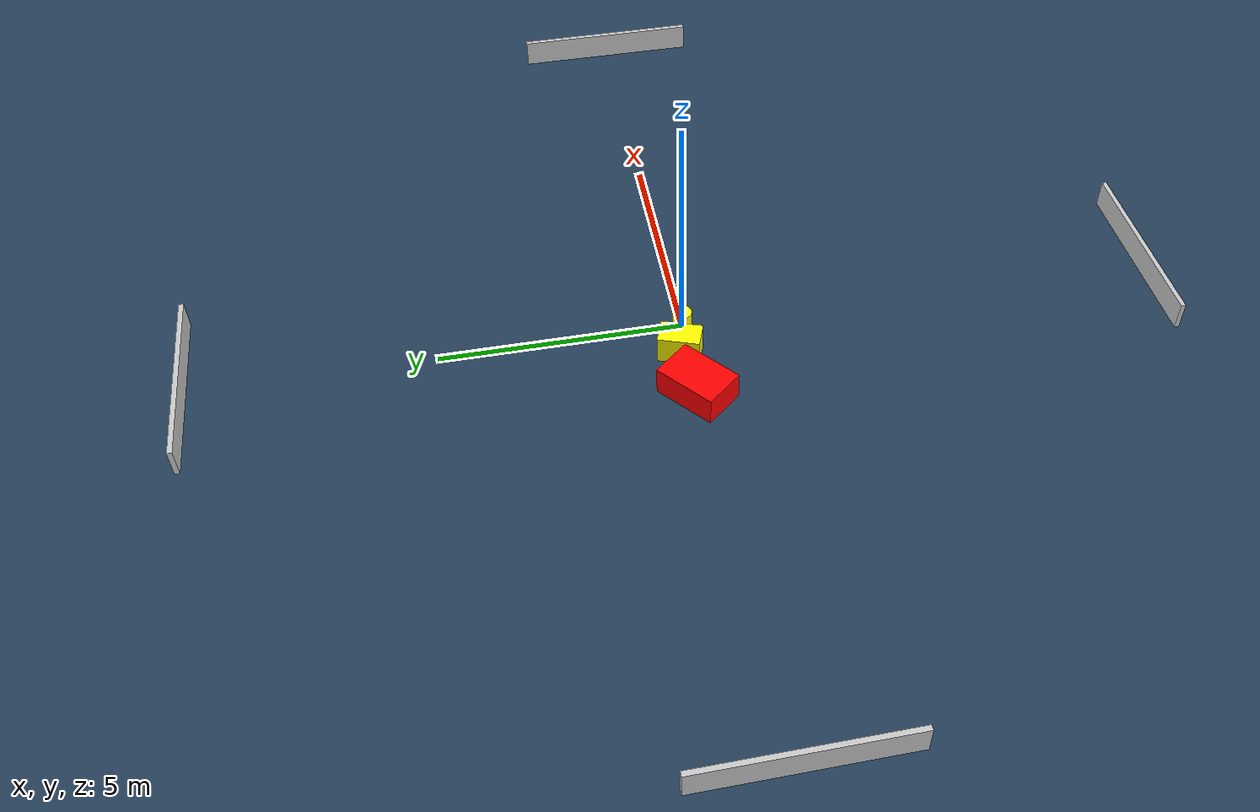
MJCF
<?xml version="1.0" ?>
<mujoco model="generated_environment">
  <option timestep="0.01" integrator="RK4" cone="elliptic"/>
  <default>
    <geom density="1"/>
  </default>
  <asset>
    <texture builtin="gradient" height="3072" name="skybox" rgb1="0.3 0.5 0.7" rgb2="0 0 0" type="skybox" width="512"/>
    <texture builtin="checker" height="300" name="groundplane" rgb1="0.2 0.3 0.4" rgb2="0.1 0.2 0.3" type="2d" width="300"/>
    <material name="groundplane" reflectance="0.2" texrepeat="5 5" texture="groundplane"/>
  </asset>
  <worldbody>
    <light dir="0 0 -1" directional="true" pos="0 0 1.5"/>
    <geom condim="3" friction="0.5 0.005 0.001" material="groundplane" name="floor" pos="0 0 0" size="0 0 0.05" type="plane"/>
    <body name="walls">
      <geom name="wall_1" condim="4" pos="-10.0 0.0 0.3" rgba="0.800000011920929 0.800000011920929 0.800000011920929 1.0" size="0.05 2.0 0.3" type="box"/>
      <geom name="wall_2" condim="4" pos="10.0 0.0 0.3" rgba="0.800000011920929 0.800000011920929 0.800000011920929 1.0" size="0.05 2.0 0.3" type="box"/>
      <geom name="wall_3" condim="4" pos="0.0 -10.0 0.3" rgba="0.800000011920929 0.800000011920929 0.800000011920929 1.0" size="2.0 0.05 0.3" type="box"/>
      <geom name="wall_4" condim="4" pos="0.0 10.0 0.3" rgba="0.800000011920929 0.800000011920929 0.800000011920929 1.0" size="2.0 0.05 0.3" type="box"/>
    </body>
    <body name="robot">
      <joint name="joint_x" type="slide" pos="0 0 0" axis="1 0 0"/>
      <joint name="joint_y" type="slide" pos="0 0 0" axis="0 1 0"/>
      <geom name="robot" type="cylinder" pos="0.0 0.0 0.2" size="0.2 0.2 0.0" mass="5.0" friction="1.0 0.005 0.0001" condim="4" rgba="1.0 1.0 0.0 1.0"/>
    </body>
    <body name="obstacle_1_movable">
      <geom name="obstacle_1_movable" condim="4" pos="-0.7672963316076717 0.19014357261448941 0.3" euler="0 0 160.19855190561967" friction="0.0 0.005 0.001" rgba="1.0 1.0 0.0 1.0" size="0.2645536714853727 0.4266516405830487 0.3" type="box" mass="0.1"/>
      <joint type="free"/>
    </body>
    <body name="obstacle_2_static">
      <geom name="obstacle_2_static" condim="4" pos="-1.9037052551460065 0.0640221525787354 0.3" euler="0 0 310.08983028288395" friction="0.0 0.005 0.001" rgba="1.0 0.0 0.0 1.0" size="0.4478398568606399 0.6702990094336576 0.3" type="box"/>
    </body>
  </worldbody>
  <actuator>
    <motor name="actuator_x" joint="joint_x" gear="1" ctrlrange="-1 1"/>
    <motor name="actuator_y" joint="joint_y" gear="1" ctrlrange="-1 1"/>
  </actuator>
</mujoco>
